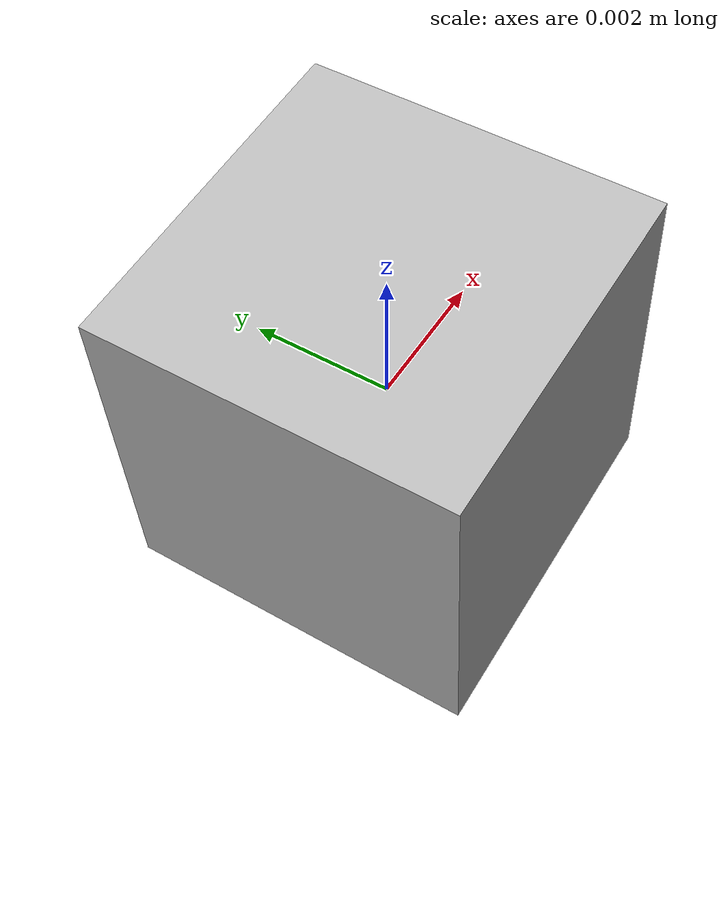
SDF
<?xml version="1.0"?>
<sdf version="1.8">
  <model name="camera_v2">
    <link name="camera_link">
      <pose relative_to='__model__'>0 0 0 0 0.065 3.14159265358979</pose>
      <inertial>
        <mass>0.001</mass> <!-- Ajuste a massa conforme necessário -->
        <inertia>
          <ixx>1.0E-06</ixx>
          <iyy>1.0E-06</iyy>
          <izz>1.0E-06</izz>
        </inertia>
      </inertial>
      <collision name="collision">
        <geometry>
          <box>
            <size>0.005 0.005 0.005</size>
          </box>
        </geometry>
      </collision>
      <visual name="visual">
        <geometry>
          <box>
            <size>0.005 0.005 0.005</size>
          </box>
        </geometry>
      </visual>
      <sensor name="sensor_camera" type="camera">
        <camera name="camera">
          <horizontal_fov>2.0944</horizontal_fov><!-- 120 graus em radianos -->
          <image>
            <width>640</width>
            <height>480</height>
          </image>
          <clip>
            <near>0.1</near>
            <far>100</far>
          </clip>
        </camera>
        <always_on>1</always_on>
        <update_rate>30</update_rate>
        <visualize>true</visualize>
        <topic>/camera</topic>
      </sensor>
    </link>
  </model>
</sdf>
